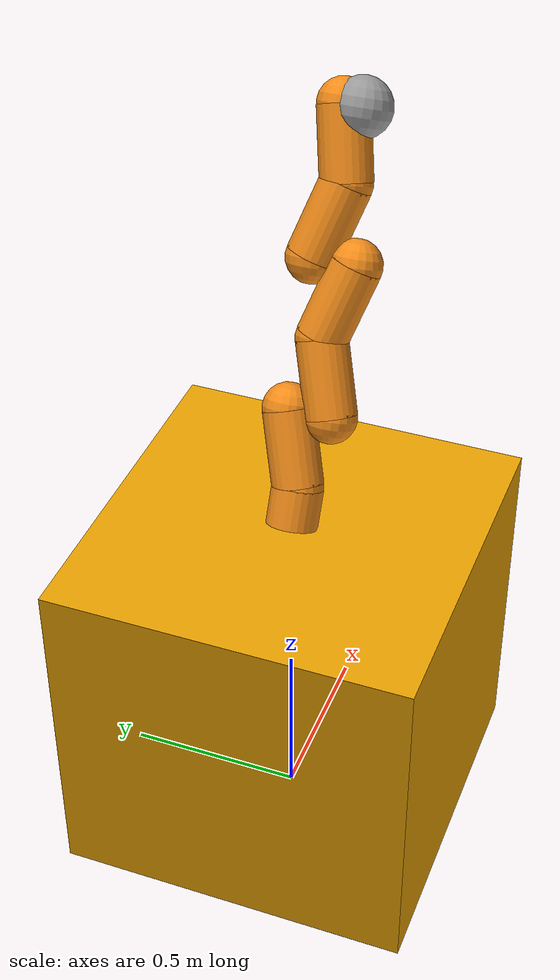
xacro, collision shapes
<?xml version="1.0"?>
<robot xmlns:xacro="http://www.ros.org/wiki/xacro" name="single_lwr_robot">

	<!-- Include all models -->
	<xacro:include filename="$(find lwr_description)/model/kuka_lwr.urdf.xacro"/>

	<!-- and assemble your robot -->
	<link name="box">
		<inertial>
			<mass value="5.0"/>
			<origin rpy="0 0 0" xyz="0 0 0"/>
			<inertia ixx="0.01"
             iyy="0.01"
             izz="0.01"
             ixy="0" iyz="0" ixz="0"/>
		</inertial>
		<visual>
			<origin xyz="0 0 0.50" rpy="0 0 0"/>
			<geometry>
				<box size="1.0 1.0 1.0"/>
			</geometry>
		</visual>
		<collision>
			<origin xyz="0 0 0.50" rpy="0 0 0"/>
			<geometry>
				<box size="1.0 1.0 1.0"/>
			</geometry>
		</collision>
	</link>

	<gazebo reference="box">
		<static>true</static>
	</gazebo>

	<!-- using the models -->
	<xacro:kuka_lwr parent="box" name="lwr">
		<origin xyz="0 0 1" rpy="0 0.45 0"/>
	</xacro:kuka_lwr>

</robot>

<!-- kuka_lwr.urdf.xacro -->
<robot name="kuka_lwr" xmlns:xacro="http://www.ros.org/wiki/xacro">

	<!-- utils /-->
	<xacro:include filename="$(find lwr_description)/model/utils.xacro"/>
	<xacro:include filename="$(find lwr_description)/model/kuka_materials.xacro"/>

	<!-- gazebo and transmission models /-->
	<xacro:include filename="$(find lwr_description)/model/kuka_lwr.gazebo.xacro"/>
	<xacro:include filename="$(find lwr_description)/model/kuka_lwr.transmission.xacro"/>
	<xacro:include filename="$(find lwr_description)/model/kuka_lwr.stiffness_damping_addtorque.xacro"/>

	<!-- properties /-->
	<xacro:property name="base_mass" value="2.0"/>
	<xacro:property name="link_mass" value="2.35"/>
    <xacro:property name="wrist_mass" value="1.1"/>
    <xacro:property name="tip_mass" value="0.25"/>
	<xacro:property name="velocity_scale" value="1"/>
	<xacro:property name="effort_scale" value="1"/>
	<xacro:property name="use_extra_joints_default" value="true"/>
	<xacro:property name="inertia_scale" value="10000000.0"/>

	<!-- URDF model /-->
	<xacro:macro name="kuka_lwr" params="parent name *origin use_extra_joints:=${use_extra_joints_default}">

		<!-- First (shoulder) element of the arm. Fixed to its parent. -->
		<joint name="${parent}_${name}_base_joint" type="fixed">
			<xacro:insert_block name="origin"/>
			<origin xyz="0 0 0" rpy="0 0 0"/>
			<parent link="${parent}"/>
			<child link="${name}_base_link"/>
		</joint>

		<link name="${name}_base_link">
			<inertial>
				<mass value="${base_mass}"/>
				<origin xyz="0 0 0.055"  />
				<cylinder_inertia_def radius="0.06" length="0.11" mass="${base_mass}"/>
			</inertial>
			<visual>
				<origin xyz="0 0 0" rpy="0 0 ${M_PI}"/>
				<geometry>
					<mesh filename="package://lwr_description/meshes/lwr4plus/visual/base.STL"/>
				</geometry>
				<material name="Kuka/Orange"/>
			</visual>
			<collision>
				<origin xyz="0 0 0.055" rpy="0 0 ${M_PI}"/>
				<geometry>
					<cylinder radius="0.07" length="0.11"/>
				</geometry>
			</collision>
		</link>

		<!-- Second segment of the arm. Joint along z-axis -->
		<joint name="${name}_a1_joint" type="revolute">
			<origin xyz="0 0 0.11" rpy="0 0 0"/>
			<axis xyz="0 0 1"/>
			<limit lower="${-170 * M_PI / 180}" upper="${170 * M_PI / 180}" effort="176" velocity="${velocity_scale * 110 * M_PI / 180}" />
			<dynamics friction="1.0" damping="0.7"/>
			<parent link="${name}_base_link"/>
			<child link="${name}_1_link"/>
		</joint>

		<link name="${name}_1_link">
			<inertial>
				<mass value="${link_mass}"/>
				<origin rpy="0 0 0" xyz="0.00000301 0.02391176 0.11939403"/>
			    <inertia ixx="${136938.093750 / inertia_scale}" ixy="${4.968005 / inertia_scale}" ixz="${8.730822 / inertia_scale}" iyy="${135390.187500 / inertia_scale}" iyz="${-23715.781250 / inertia_scale}" izz="${40896.656250 / inertia_scale}" />
			</inertial>
			<visual>
				<origin xyz="0 0 -0.008" rpy="0 0 ${M_PI}"/>
				<geometry>
					<mesh filename="package://lwr_description/meshes/lwr4plus/visual/link_1.STL"/>
				</geometry>
				<material name="Kuka/Orange"/>
			</visual>
			<collision>
				<origin xyz="0 0 0.0" rpy="0 0 0"/>
				<geometry>
					<sphere radius="0.07"/>
				</geometry>
			</collision>
			<collision>
				<origin xyz="0 0.06 0.2" rpy="0 0 0"/>
				<geometry>
					<sphere radius="0.07"/>
				</geometry>
			</collision>
			<collision>
				<origin xyz="0 0.03 0.1" rpy="-0.291 0 0"/>
				<geometry>
					<cylinder radius="0.07" length="0.208"/>
				</geometry>
			</collision>
		</link>

		<!-- Third segment of the arm. Joint along y-axis -->
		<joint name="${name}_a2_joint" type="revolute">
			<origin xyz="0 0 0.2005" rpy="0 0 0"/>
			<axis xyz="0 -1 0"/>
			<limit lower="${-120 * M_PI / 180}" upper="${120 * M_PI / 180}" effort="176" velocity="${velocity_scale * 110 * M_PI / 180}" />
			<dynamics friction="1.0" damping="0.7"/>
			<parent link="${name}_1_link"/>
			<child link="${name}_2_link"/>
		</joint>

		<link name="${name}_2_link">
			<inertial>
				<mass value="${link_mass}"/>
				<origin rpy="0 0 0" xyz="0.00000301 -0.02391175 0.08110597"/>
			    <inertia ixx="${136938.093750 / inertia_scale}" ixy="${-4.968005 / inertia_scale}" ixz="${-8.730822 / inertia_scale}" iyy="${135390.187500 / inertia_scale}" iyz="${-23715.781250 / inertia_scale}" izz="${40896.656250 / inertia_scale}" />
			</inertial>
			<visual>
				<origin xyz="0 0 0.0" rpy="0 0 ${M_PI}"/>
				<geometry>
					<mesh filename="package://lwr_description/meshes/lwr4plus/visual/link_2.STL"/>
				</geometry>
				<material name="Kuka/Orange"/>
			</visual>
			<collision>
				<origin xyz="0 0 0.2" rpy="0 0 0"/>
				<geometry>
					<sphere radius="0.07"/>
				</geometry>
			</collision>
			<collision>
				<origin xyz="0 -0.06 0.0" rpy="0 0 0"/>
				<geometry>
					<sphere radius="0.07"/>
				</geometry>
			</collision>
			<collision>
				<origin xyz="0 -0.03 0.1" rpy="-0.291 0 0"/>
				<geometry>
					<cylinder radius="0.07" length="0.208"/>
				</geometry>
			</collision>
		</link>

		<!-- Fourth element of the arm. z-axis -->
		<joint name="${name}_e1_joint" type="revolute">
			<origin xyz="0 0 0.20" rpy="0 0 0"/>
			<axis xyz="0 0 1"/>
			<limit lower="${-170 * M_PI / 180}" upper="${170 * M_PI / 180}" effort="100" velocity="${velocity_scale * 128 * M_PI / 180}" />
			<dynamics friction="1.0" damping="0.7"/>
			<parent link="${name}_2_link"/>
			<child link="${name}_3_link"/>
		</joint>

		<link name="${name}_3_link">
			<inertial>
				<mass value="${link_mass}"/>
				<origin rpy="0 0 0" xyz="-0.00000302 -.02391175 0.11939403"/>
			    <inertia ixx="${136938.093750 / inertia_scale}" ixy="${4.968005 / inertia_scale}" ixz="${-8.730822 / inertia_scale}" iyy="${135390.187500 / inertia_scale}" iyz="${23715.781250 / inertia_scale}" izz="${40896.656250 / inertia_scale}" />
			</inertial>
			<visual>
				<origin xyz="0 0 -0.008" rpy="0 0 ${M_PI}"/>
				<geometry>
					<mesh filename="package://lwr_description/meshes/lwr4plus/visual/link_3.STL"/>
				</geometry>
				<material name="Kuka/Orange"/>
			</visual>
			<collision>
				<origin xyz="0 0 0.0" rpy="0 0 0"/>
				<geometry>
					<sphere radius="0.07"/>
				</geometry>
			</collision>
			<collision>
				<origin xyz="0 -0.06 0.2" rpy="0 0 0"/>
				<geometry>
					<sphere radius="0.07"/>
				</geometry>
			</collision>
			<collision>
				<origin xyz="0 -0.03 0.1" rpy="0.291 0 0"/>
				<geometry>
					<cylinder radius="0.07" length="0.208"/>
				</geometry>
			</collision>
		</link>

		<!-- fifth element of the arm. x-axis -->
		<joint name="${name}_a3_joint" type="revolute">
			<origin xyz="0 0 0.20" rpy="0 0 0"/>
			<axis xyz="0 1 0"/>
			<limit lower="${-120 * M_PI / 180}" upper="${120 * M_PI / 180}" effort="100" velocity="${velocity_scale * 128 * M_PI / 180}" />
			<dynamics friction="1.0" damping="0.7"/>
			<parent link="${name}_3_link"/>
			<child link="${name}_4_link"/>
		</joint>

		<link name="${name}_4_link">
			<inertial>
				<mass value="${link_mass}"/>
				<origin rpy="0 0 0" xyz="-0.00000303 .02391175 0.08110597"/>
			    <inertia ixx="${136938.093750 / inertia_scale}" ixy="${-4.968005 / inertia_scale}" ixz="${8.730822 / inertia_scale}" iyy="${135390.187500 / inertia_scale}" iyz="${23715.781250 / inertia_scale}" izz="${40896.656250 / inertia_scale}" />
			</inertial>
			<visual>
				<origin xyz="0 0 0.0" rpy="0 0 ${M_PI}"/>
				<geometry>
					<mesh filename="package://lwr_description/meshes/lwr4plus/visual/link_4.STL"/>
				</geometry>
				<material name="Kuka/Orange"/>
			</visual>
			<collision>
			<origin xyz="0 0 0.2" rpy="0 0 0"/>
			<geometry>
				<sphere radius="0.07"/>
			</geometry>
			</collision>
			<collision>
				<origin xyz="0 0.06 0.0" rpy="0 0 0"/>
				<geometry>
					<sphere radius="0.07"/>
				</geometry>
			</collision>
			<collision>
				<origin xyz="0 0.03 0.1" rpy="0.291 0 0"/>
				<geometry>
					<cylinder radius="0.07" length="0.208"/>
				</geometry>
			</collision>
		</link>

		<!-- Sixth element of the arm. z-axis -->
		<joint name="${name}_a4_joint" type="revolute">
			<origin xyz="0 0 0.20" rpy="0 0 0"/>
			<axis xyz="0 0 1"/>
			<limit lower="${-170 * M_PI / 180}" upper="${170 * M_PI / 180}" effort="100" velocity="${velocity_scale * 204 * M_PI / 180}" />
			<dynamics friction="1.0" damping="0.7"/>
			<parent link="${name}_4_link"/>
			<child link="${name}_5_link"/>
		</joint>

		<link name="${name}_5_link">
			<inertial>
				<mass value="${link_mass}"/>
				<origin rpy="0 0 0" xyz="-0.00000303 .02391175 0.08110597"/>
			    <inertia ixx="${82625.953125 / inertia_scale}" ixy="${5.603518 / inertia_scale}" ixz="${8.553005 / inertia_scale}" iyy="${76228.593750 / inertia_scale}" iyz="${-24984.386719 / inertia_scale}" izz="${33607.035156 / inertia_scale}" />
			</inertial>
			<visual>
				<origin xyz="0 0 -0.008" rpy="0 0 ${M_PI}"/>
				<geometry name="${name}_5_geom">
					<mesh filename="package://lwr_description/meshes/lwr4plus/visual/link_5.STL"/>
				</geometry>
				<material name="Kuka/Orange"/>
			</visual>

			<collision>
				<origin xyz="0 0 0.0" rpy="0 0 0"/>
				<geometry>
					<sphere radius="0.07"/>
				</geometry>
			</collision>
			<collision>
				<origin xyz="0 0.04 0.19" rpy="0 0 0"/>
				<geometry>
					<sphere radius="0.07"/>
				</geometry>
			</collision>
			<collision>
				<origin xyz="0 0.02 0.095" rpy="-0.207 0 0"/>
				<geometry>
					<cylinder radius="0.07" length="0.198"/>
				</geometry>
			</collision>
		</link>

		<!-- Seventh element of the arm. z-axis -->
		<joint name="${name}_a5_joint" type="revolute">
			<origin xyz="0 0 0.19" rpy="0 0 0"/>
			<axis xyz="0 -1 0"/>
			<limit lower="${-120 * M_PI / 180}" upper="${120 * M_PI / 180}" effort="38" velocity="${velocity_scale * 184 * M_PI / 180}" />
			<dynamics friction="1.0" damping="0.7"/>
			<parent link="${name}_5_link"/>
			<child link="${name}_6_link"/>
		</joint>

		<link name="${name}_6_link">
			<inertial>
				<mass value="${wrist_mass}"/>
				<origin rpy="0 0 0" xyz="-0.00000001 -.00447585 -0.00290105"/>
			    <inertia ixx="${29610.587891 / inertia_scale}" ixy="${-0.002319 / inertia_scale}" ixz="${0.023622 / inertia_scale}" iyy="${29691.074219 / inertia_scale}" iyz="${246.776962 / inertia_scale}" izz="${32060.654297 / inertia_scale}" />
			</inertial>

			<visual>
				<origin xyz="0 0 0" rpy="0 0 ${M_PI}"/>
				<geometry>
					<mesh filename="package://lwr_description/meshes/lwr4plus/visual/link_6.STL"/>
				</geometry>
			<material name="Kuka/Grey"/>
			</visual>
			<collision>
			<origin xyz="0 -0.01 0" rpy="0 0 ${M_PI}"/>
			<geometry>
				<sphere radius="0.08"/>
			</geometry>
			</collision>
		</link>

		<!-- Eighth element of the arm. z-axis -->
		<joint name="${name}_a6_joint" type="revolute">
			<origin xyz="0 0 0.078" rpy="0 0 0"/>
			<axis xyz="0 0 1"/>
			<limit lower="${-170 * M_PI / 180}" upper="${170 * M_PI / 180}" effort="38" velocity="${velocity_scale * 184 * M_PI / 180}" />
			<dynamics friction="1.0" damping="0.7"/>
			<parent link="${name}_6_link"/>
			<child link="${name}_7_link"/>
		</joint>

		<link name="${name}_7_link">
			<inertial>
				<mass value="${tip_mass}"/>
			    <origin xyz="0 0 -0.014685" rpy="0 0 0"/>
        		<inertia ixx="${1 / 12  * (3 * 0.05 * 0.05 + 0.01 * 0.01)}"  ixy="0"  ixz="0" iyy="${1 / 12  * (3 * 0.05 * 0.05 + 0.01 * 0.01)}" iyz="0" izz="${1 / 12  * (3 * 0.05 * 0.05 + 0.01 * 0.01)}" />
			</inertial>
			<visual>
				<origin xyz="0 0 0" rpy="0 0 ${M_PI}"/>
				<geometry>
					<mesh filename="package://lwr_description/meshes/lwr4plus/visual/link_7.STL"/>
				</geometry>
			<material name="Kuka/DarkGrey"/>
			</visual>
		</link>

		<xacro:kuka_lwr_gazebo name="${name}"/>
		<xacro:kuka_lwr_transmission name="${name}"/>
		<xacro:if value = "${use_extra_joints}">
			<xacro:kuka_lwr_stiffness_damping_addtorque name="${name}"/>
		</xacro:if>

	</xacro:macro>

</robot>

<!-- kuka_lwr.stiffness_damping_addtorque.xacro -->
<robot xmlns:xacro="http://www.ros.org/wiki/xacro">

	<xacro:property name="max_stiffness" value="2000"/>
	<xacro:property name="min_stiffness" value="0.01"/>
	<xacro:property name="rate_stiffness" value="20000"/> <!-- reflex to stiffness -->

	<xacro:property name="max_damping" value="1.0"/>
	<xacro:property name="min_damping" value="0.1"/>
	<xacro:property name="rate_damping" value="4.0"/> <!-- reflex to damping -->

	<xacro:property name="max_add_torqueA12" value="80.0"/>
	<xacro:property name="min_add_torqueA12" value="-80.0"/>
	<xacro:property name="max_add_torqueE1A34" value="80.0"/>
	<xacro:property name="min_add_torqueE1A34" value="-80.0"/>
	<xacro:property name="max_add_torqueA56" value="80.0"/>
	<xacro:property name="min_add_torqueA56" value="-80.0"/>
	<xacro:property name="rate_add_torque" value="8.0"/> <!-- reflex to additional torque -->

	<xacro:macro name="kuka_lwr_stiffness_damping_addtorque" params="name">

		<joint name="${name}_a1_joint_stiffness" type="revolute">
			<axis xyz="0 0 1"/>
			<limit lower="${min_stiffness}" upper="${max_stiffness}" effort="0" velocity="${rate_stiffness}" />
			<safety_controller soft_lower_limit="${min_stiffness}" soft_upper_limit="${max_stiffness}" k_position="30" k_velocity="30"/>
			<parent link="${name}_base_link"/>
			<child link="${name}_1_link_dummy"/>
		</joint>
		<link name="${name}_1_link_dummy"/>

		<joint name="${name}_a2_joint_stiffness" type="revolute">
			<axis xyz="0 0 1"/>
			<limit lower="${min_stiffness}" upper="${max_stiffness}" effort="0" velocity="${rate_stiffness}" />
			<safety_controller soft_lower_limit="${min_stiffness}" soft_upper_limit="${max_stiffness}" k_position="30" k_velocity="30"/>
			<parent link="${name}_1_link"/>
			<child link="${name}_2_link_dummy"/>
		</joint>
		<link name="${name}_2_link_dummy"/>

		<joint name="${name}_e1_joint_stiffness" type="revolute">
			<axis xyz="0 0 1"/>
			<limit lower="${min_stiffness}" upper="${max_stiffness}" effort="0" velocity="${rate_stiffness}" />
			<safety_controller soft_lower_limit="${min_stiffness}" soft_upper_limit="${max_stiffness}" k_position="30" k_velocity="30"/>
			<parent link="${name}_2_link"/>
			<child link="${name}_3_link_dummy"/>
		</joint>
		<link name="${name}_3_link_dummy"/>

		<joint name="${name}_a3_joint_stiffness" type="revolute">
			<axis xyz="0 0 1"/>
			<limit lower="${min_stiffness}" upper="${max_stiffness}" effort="0" velocity="${rate_stiffness}" />
			<safety_controller soft_lower_limit="${min_stiffness}" soft_upper_limit="${max_stiffness}" k_position="30" k_velocity="30"/>
			<parent link="${name}_3_link"/>
			<child link="${name}_4_link_dummy"/>
		</joint>
		<link name="${name}_4_link_dummy"/>

		<joint name="${name}_a4_joint_stiffness" type="revolute">
			<axis xyz="0 0 1"/>
			<limit lower="${min_stiffness}" upper="${max_stiffness}" effort="0" velocity="${rate_stiffness}" />
			<safety_controller soft_lower_limit="${min_stiffness}" soft_upper_limit="${max_stiffness}" k_position="30" k_velocity="30"/>
			<parent link="${name}_4_link"/>
			<child link="${name}_5_link_dummy"/>
		</joint>
		<link name="${name}_5_link_dummy"/>

		<joint name="${name}_a5_joint_stiffness" type="revolute">
			<axis xyz="0 0 1"/>
			<limit lower="${min_stiffness}" upper="${max_stiffness}" effort="0" velocity="${rate_stiffness}" />
			<safety_controller soft_lower_limit="${min_stiffness}" soft_upper_limit="${max_stiffness}" k_position="30" k_velocity="30"/>
			<parent link="${name}_5_link"/>
			<child link="${name}_6_link_dummy"/>
		</joint>
		<link name="${name}_6_link_dummy"/>

		<joint name="${name}_a6_joint_stiffness" type="revolute">
			<axis xyz="0 0 1"/>
			<limit lower="${min_stiffness}" upper="${max_stiffness}" effort="0" velocity="${rate_stiffness}" />
			<safety_controller soft_lower_limit="${min_stiffness}" soft_upper_limit="${max_stiffness}" k_position="30" k_velocity="30"/>
			<parent link="${name}_6_link"/>
			<child link="${name}_7_link_dummy"/>
		</joint>
		<link name="${name}_7_link_dummy"/>

		<!-- fake stuff for damping and set_point -->
		<joint name="${name}_a1_joint_add_torque" type="revolute">
			<axis xyz="0 0 1"/>
			<limit lower="${min_add_torqueA12}" upper="${max_add_torqueA12}" effort="0" velocity="${rate_add_torque}" />
			<safety_controller soft_lower_limit="${min_add_torqueA12}" soft_upper_limit="${max_add_torqueA12}" k_position="30" k_velocity="30"/>
			<parent link="${name}_base_link"/>
			<child link="${name}_1_link_dummy_add_torque"/>
		</joint>
		<link name="${name}_1_link_dummy_add_torque"/>

		<joint name="${name}_a2_joint_add_torque" type="revolute">
			<axis xyz="0 0 1"/>
			<limit lower="${min_add_torqueA12}" upper="${max_add_torqueA12}" effort="0" velocity="${rate_add_torque}" />
			<safety_controller soft_lower_limit="${min_add_torqueA12}" soft_upper_limit="${max_add_torqueA12}" k_position="30" k_velocity="30"/>
			<parent link="${name}_1_link"/>
			<child link="${name}_2_link_dummy_add_torque"/>
		</joint>
		<link name="${name}_2_link_dummy_add_torque"/>

		<joint name="${name}_e1_joint_add_torque" type="revolute">
			<axis xyz="0 0 1"/>
			<limit lower="${min_add_torqueE1A34}" upper="${max_add_torqueE1A34}" effort="0" velocity="${rate_add_torque}" />
			<safety_controller soft_lower_limit="${min_add_torqueE1A34}" soft_upper_limit="${max_add_torqueE1A34}" k_position="30" k_velocity="30"/>
			<parent link="${name}_2_link"/>
			<child link="${name}_3_link_dummy_add_torque"/>
		</joint>
		<link name="${name}_3_link_dummy_add_torque"/>

		<joint name="${name}_a3_joint_add_torque" type="revolute">
			<axis xyz="0 0 1"/>
			<limit lower="${min_add_torqueE1A34}" upper="${max_add_torqueE1A34}" effort="0" velocity="${rate_add_torque}" />
			<safety_controller soft_lower_limit="${min_add_torqueE1A34}" soft_upper_limit="${max_add_torqueE1A34}" k_position="30" k_velocity="30"/>
			<parent link="${name}_3_link"/>
			<child link="${name}_4_link_dummy_add_torque"/>
		</joint>
		<link name="${name}_4_link_dummy_add_torque"/>

		<joint name="${name}_a4_joint_add_torque" type="revolute">
			<axis xyz="0 0 1"/>
			<limit lower="${min_add_torqueE1A34}" upper="${max_add_torqueE1A34}" effort="0" velocity="${rate_add_torque}" />
			<safety_controller soft_lower_limit="${min_add_torqueE1A34}" soft_upper_limit="${max_add_torqueE1A34}" k_position="30" k_velocity="30"/>
			<parent link="${name}_4_link"/>
			<child link="${name}_5_link_dummy_add_torque"/>
		</joint>
		<link name="${name}_5_link_dummy_add_torque"/>

		<joint name="${name}_a5_joint_add_torque" type="revolute">
			<axis xyz="0 0 1"/>
			<limit lower="${min_add_torqueA56}" upper="${max_add_torqueA56}" effort="0" velocity="${rate_add_torque}" />
			<safety_controller soft_lower_limit="${min_add_torqueA56}" soft_upper_limit="${max_add_torqueA56}" k_position="30" k_velocity="30"/>
			<parent link="${name}_5_link"/>
			<child link="${name}_6_link_dummy_add_torque"/>
		</joint>
		<link name="${name}_6_link_dummy_add_torque"/>

		<joint name="${name}_a6_joint_add_torque" type="revolute">
			<axis xyz="0 0 1"/>
			<limit lower="${min_add_torqueA56}" upper="${max_add_torqueA56}" effort="0" velocity="${rate_add_torque}" />
			<safety_controller soft_lower_limit="${min_add_torqueA56}" soft_upper_limit="${max_add_torqueA56}" k_position="30" k_velocity="30"/>
			<parent link="${name}_6_link"/>
			<child link="${name}_7_link_dummy_add_torque"/>
		</joint>
		<link name="${name}_7_link_dummy_add_torque"/>

		<joint name="${name}_a1_joint_damping" type="revolute">
			<axis xyz="0 0 1"/>
			<limit lower="${min_damping}" upper="${max_damping}" effort="0" velocity="${rate_damping}" />
			<safety_controller soft_lower_limit="${min_damping}" soft_upper_limit="${max_damping}" k_position="30" k_velocity="30"/>
			<parent link="${name}_base_link"/>
			<child link="${name}_1_link_dummy_damping"/>
		</joint>
		<link name="${name}_1_link_dummy_damping"/>

		<joint name="${name}_a2_joint_damping" type="revolute">
			<axis xyz="0 0 1"/>
			<limit lower="${min_damping}" upper="${max_damping}" effort="0" velocity="${rate_damping}" />
			<safety_controller soft_lower_limit="${min_damping}" soft_upper_limit="${max_damping}" k_position="30" k_velocity="30"/>
			<parent link="${name}_1_link"/>
			<child link="${name}_2_link_dummy_damping"/>
		</joint>
		<link name="${name}_2_link_dummy_damping"/>

		<joint name="${name}_e1_joint_damping" type="revolute">
			<axis xyz="0 0 1"/>
			<limit lower="${min_damping}" upper="${max_damping}" effort="0" velocity="${rate_damping}" />
			<safety_controller soft_lower_limit="${min_damping}" soft_upper_limit="${max_damping}" k_position="30" k_velocity="30"/>
			<parent link="${name}_2_link"/>
			<child link="${name}_3_link_dummy_damping"/>
		</joint>
		<link name="${name}_3_link_dummy_damping"/>

		<joint name="${name}_a3_joint_damping" type="revolute">
			<axis xyz="0 0 1"/>
			<limit lower="${min_damping}" upper="${max_damping}" effort="0" velocity="${rate_damping}" />
			<safety_controller soft_lower_limit="${min_damping}" soft_upper_limit="${max_damping}" k_position="30" k_velocity="30"/>
			<parent link="${name}_3_link"/>
			<child link="${name}_4_link_dummy_damping"/>
		</joint>
		<link name="${name}_4_link_dummy_damping"/>

		<joint name="${name}_a4_joint_damping" type="revolute">
			<axis xyz="0 0 1"/>
			<limit lower="${min_damping}" upper="${max_damping}" effort="0" velocity="${rate_damping}" />
			<safety_controller soft_lower_limit="${min_damping}" soft_upper_limit="${max_damping}" k_position="30" k_velocity="30"/>
			<parent link="${name}_4_link"/>
			<child link="${name}_5_link_dummy_damping"/>
		</joint>
		<link name="${name}_5_link_dummy_damping"/>

		<joint name="${name}_a5_joint_damping" type="revolute">
			<axis xyz="0 0 1"/>
			<limit lower="${min_damping}" upper="${max_damping}" effort="0" velocity="${rate_damping}" />
			<safety_controller soft_lower_limit="${min_damping}" soft_upper_limit="${max_damping}" k_position="30" k_velocity="30"/>
			<parent link="${name}_5_link"/>
			<child link="${name}_6_link_dummy_damping"/>
		</joint>
		<link name="${name}_6_link_dummy_damping"/>

		<joint name="${name}_a6_joint_damping" type="revolute">
			<axis xyz="0 0 1"/>
			<limit lower="${min_damping}" upper="${max_damping}" effort="0" velocity="${rate_damping}" />
			<safety_controller soft_lower_limit="${min_damping}" soft_upper_limit="${max_damping}" k_position="30" k_velocity="30"/>
			<parent link="${name}_6_link"/>
			<child link="${name}_7_link_dummy_damping"/>
		</joint>
		<link name="${name}_7_link_dummy_damping"/>

	</xacro:macro>

</robot>
